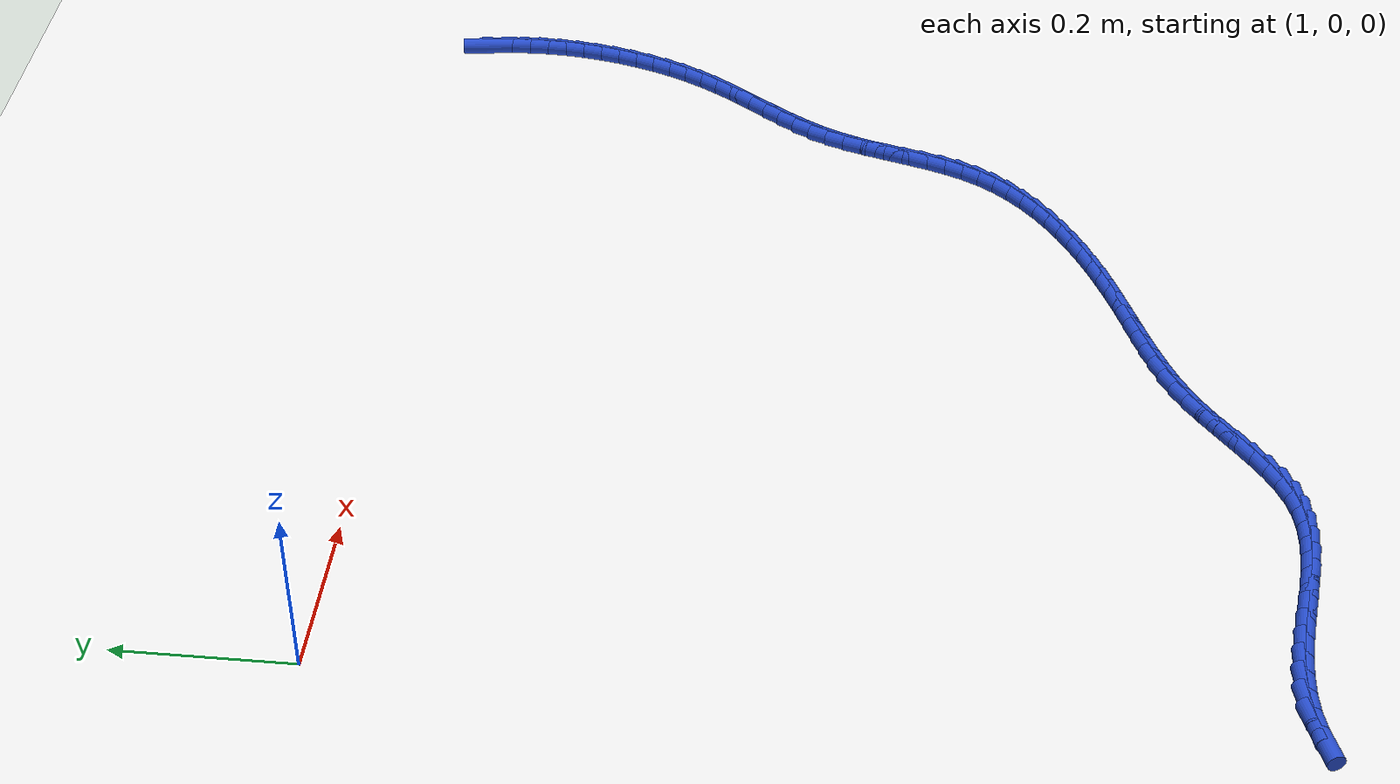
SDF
<sdf version="1.6">
 <world name="default">
  <model name="ground_plane">
   <static>1</static>
   <link name="link">
    <collision name="collision">
     <geometry><plane><normal>0 0 1</normal><size>100 100</size></plane></geometry>
     <surface><friction><ode><mu>100</mu><mu2>50</mu2></ode></friction></surface>
    </collision>
    <visual name="visual">
     <cast_shadows>0</cast_shadows>
     <geometry><plane><normal>0 0 1</normal><size>100 100</size></plane></geometry>
     <material>
      <script><uri>file://media/materials/scripts/gazebo.material</uri><name>Gazebo/WhiteGlow</name></script>
     </material>
    </visual>
   </link>
  </model>
  <model name="line">
   <link name="link_141">
    <pose>2.1189472659324258 -0.017356437604629564 0.01 0 1.57 -1.4437249046157214</pose>
    <collision name="collision">
     <geometry><cylinder><radius>0.01</radius><length>0.08</length></cylinder></geometry>
    </collision>
    <visual name="visual">
     <material>
      <script><name>Gazebo/Blue</name><uri>file://media/materials/scripts/gazebo.material</uri></script>
     </material>
     <geometry><cylinder><radius>0.01</radius><length>0.08</length></cylinder></geometry>
    </visual>
   </link>
   <link name="link_142">
    <pose>2.1220287822517596 -0.04147604283631494 0.01 0 1.57 -1.50576079209515</pose>
    <collision name="collision">
     <geometry><cylinder><radius>0.01</radius><length>0.08</length></cylinder></geometry>
    </collision>
    <visual name="visual">
     <material>
      <script><name>Gazebo/Blue</name><uri>file://media/materials/scripts/gazebo.material</uri></script>
     </material>
     <geometry><cylinder><radius>0.01</radius><length>0.08</length></cylinder></geometry>
    </visual>
   </link>
   <link name="link_143">
    <pose>2.1236189362760736 -0.06589210219619643 0.01 0 1.57 -1.565374990497469</pose>
    <collision name="collision">
     <geometry><cylinder><radius>0.01</radius><length>0.08</length></cylinder></geometry>
    </collision>
    <visual name="visual">
     <material>
      <script><name>Gazebo/Blue</name><uri>file://media/materials/scripts/gazebo.material</uri></script>
     </material>
     <geometry><cylinder><radius>0.01</radius><length>0.08</length></cylinder></geometry>
    </visual>
   </link>
   <link name="link_144">
    <pose>2.1237523675672274 -0.09050411233717365 0.01 0 1.57 1.5186871497282843</pose>
    <collision name="collision">
     <geometry><cylinder><radius>0.01</radius><length>0.08</length></cylinder></geometry>
    </collision>
    <visual name="visual">
     <material>
      <script><name>Gazebo/Blue</name><uri>file://media/materials/scripts/gazebo.material</uri></script>
     </material>
     <geometry><cylinder><radius>0.01</radius><length>0.08</length></cylinder></geometry>
    </visual>
   </link>
   <link name="link_145">
    <pose>2.1224637156870774 -0.11521156991214616 0.01 0 1.57 1.4628837589048294</pose>
    <collision name="collision">
     <geometry><cylinder><radius>0.01</radius><length>0.08</length></cylinder></geometry>
    </collision>
    <visual name="visual">
     <material>
      <script><name>Gazebo/Blue</name><uri>file://media/materials/scripts/gazebo.material</uri></script>
     </material>
     <geometry><cylinder><radius>0.01</radius><length>0.08</length></cylinder></geometry>
    </visual>
   </link>
   <link name="link_146">
    <pose>2.1197876201974815 -0.13991397157401436 0.01 0 1.57 1.408440632733079</pose>
    <collision name="collision">
     <geometry><cylinder><radius>0.01</radius><length>0.08</length></cylinder></geometry>
    </collision>
    <visual name="visual">
     <material>
      <script><name>Gazebo/Blue</name><uri>file://media/materials/scripts/gazebo.material</uri></script>
     </material>
     <geometry><cylinder><radius>0.01</radius><length>0.08</length></cylinder></geometry>
    </visual>
   </link>
   <link name="link_147">
    <pose>2.1157587206602977 -0.16451081397567632 0.01 0 1.57 1.354985546572977</pose>
    <collision name="collision">
     <geometry><cylinder><radius>0.01</radius><length>0.08</length></cylinder></geometry>
    </collision>
    <visual name="visual">
     <material>
      <script><name>Gazebo/Blue</name><uri>file://media/materials/scripts/gazebo.material</uri></script>
     </material>
     <geometry><cylinder><radius>0.01</radius><length>0.08</length></cylinder></geometry>
    </visual>
   </link>
   <link name="link_148">
    <pose>2.110411656637383 -0.18890159377003235 0.01 0 1.57 1.3021433223149648</pose>
    <collision name="collision">
     <geometry><cylinder><radius>0.01</radius><length>0.08</length></cylinder></geometry>
    </collision>
    <visual name="visual">
     <material>
      <script><name>Gazebo/Blue</name><uri>file://media/materials/scripts/gazebo.material</uri></script>
     </material>
     <geometry><cylinder><radius>0.01</radius><length>0.08</length></cylinder></geometry>
    </visual>
   </link>
   <link name="link_149">
    <pose>2.1037810676905955 -0.2129858076099822 0.01 0 1.57 1.249536472732898</pose>
    <collision name="collision">
     <geometry><cylinder><radius>0.01</radius><length>0.08</length></cylinder></geometry>
    </collision>
    <visual name="visual">
     <material>
      <script><name>Gazebo/Blue</name><uri>file://media/materials/scripts/gazebo.material</uri></script>
     </material>
     <geometry><cylinder><radius>0.01</radius><length>0.08</length></cylinder></geometry>
    </visual>
   </link>
   <link name="link_150">
    <pose>2.095901593381792 -0.23666295214842542 0.01 0 1.57 1.1967847387156427</pose>
    <collision name="collision">
     <geometry><cylinder><radius>0.01</radius><length>0.08</length></cylinder></geometry>
    </collision>
    <visual name="visual">
     <material>
      <script><name>Gazebo/Blue</name><uri>file://media/materials/scripts/gazebo.material</uri></script>
     </material>
     <geometry><cylinder><radius>0.01</radius><length>0.08</length></cylinder></geometry>
    </visual>
   </link>
   <link name="link_151">
    <pose>2.0868078732728303 -0.2598325240382614 0.01 0 1.57 1.1435041202133198</pose>
    <collision name="collision">
     <geometry><cylinder><radius>0.01</radius><length>0.08</length></cylinder></geometry>
    </collision>
    <visual name="visual">
     <material>
      <script><name>Gazebo/Blue</name><uri>file://media/materials/scripts/gazebo.material</uri></script>
     </material>
     <geometry><cylinder><radius>0.01</radius><length>0.08</length></cylinder></geometry>
    </visual>
   </link>
   <link name="link_152">
    <pose>2.076534546925569 -0.2823940199323901 0.01 0 1.57 1.0893059840411992</pose>
    <collision name="collision">
     <geometry><cylinder><radius>0.01</radius><length>0.08</length></cylinder></geometry>
    </collision>
    <visual name="visual">
     <material>
      <script><name>Gazebo/Blue</name><uri>file://media/materials/scripts/gazebo.material</uri></script>
     </material>
     <geometry><cylinder><radius>0.01</radius><length>0.08</length></cylinder></geometry>
    </visual>
   </link>
   <link name="link_153">
    <pose>2.0651162539018646 -0.30424693648371093 0.01 0 1.57 1.0354444591178826</pose>
    <collision name="collision">
     <geometry><cylinder><radius>0.01</radius><length>0.08</length></cylinder></geometry>
    </collision>
    <visual name="visual">
     <material>
      <script><name>Gazebo/Blue</name><uri>file://media/materials/scripts/gazebo.material</uri></script>
     </material>
     <geometry><cylinder><radius>0.01</radius><length>0.08</length></cylinder></geometry>
    </visual>
   </link>
   <link name="link_154">
    <pose>2.0526164347894205 -0.3253213101997152 0.01 0 1.57 0.992504211376987</pose>
    <collision name="collision">
     <geometry><cylinder><radius>0.01</radius><length>0.08</length></cylinder></geometry>
    </collision>
    <visual name="visual">
     <material>
      <script><name>Gazebo/Blue</name><uri>file://media/materials/scripts/gazebo.material</uri></script>
     </material>
     <geometry><cylinder><radius>0.01</radius><length>0.08</length></cylinder></geometry>
    </visual>
   </link>
   <link name="link_155">
    <pose>2.039285199576927 -0.34574511693884974 0.01 0 1.57 0.9650577133242405</pose>
    <collision name="collision">
     <geometry><cylinder><radius>0.01</radius><length>0.08</length></cylinder></geometry>
    </collision>
    <visual name="visual">
     <material>
      <script><name>Gazebo/Blue</name><uri>file://media/materials/scripts/gazebo.material</uri></script>
     </material>
     <geometry><cylinder><radius>0.01</radius><length>0.08</length></cylinder></geometry>
    </visual>
   </link>
   <link name="link_156">
    <pose>2.025447073260622 -0.36572524028743325 0.01 0 1.57 0.9533097972507258</pose>
    <collision name="collision">
     <geometry><cylinder><radius>0.01</radius><length>0.08</length></cylinder></geometry>
    </collision>
    <visual name="visual">
     <material>
      <script><name>Gazebo/Blue</name><uri>file://media/materials/scripts/gazebo.material</uri></script>
     </material>
     <geometry><cylinder><radius>0.01</radius><length>0.08</length></cylinder></geometry>
    </visual>
   </link>
   <link name="link_157">
    <pose>2.011426773624503 -0.3854687682588839 0.01 0 1.57 0.9574218856312731</pose>
    <collision name="collision">
     <geometry><cylinder><radius>0.01</radius><length>0.08</length></cylinder></geometry>
    </collision>
    <visual name="visual">
     <material>
      <script><name>Gazebo/Blue</name><uri>file://media/materials/scripts/gazebo.material</uri></script>
     </material>
     <geometry><cylinder><radius>0.01</radius><length>0.08</length></cylinder></geometry>
    </visual>
   </link>
   <link name="link_158">
    <pose>1.9975490184525642 -0.4051827888666186 0.01 0 1.57 0.9776111329164132</pose>
    <collision name="collision">
     <geometry><cylinder><radius>0.01</radius><length>0.08</length></cylinder></geometry>
    </collision>
    <visual name="visual">
     <material>
      <script><name>Gazebo/Blue</name><uri>file://media/materials/scripts/gazebo.material</uri></script>
     </material>
     <geometry><cylinder><radius>0.01</radius><length>0.08</length></cylinder></geometry>
    </visual>
   </link>
   <link name="link_159">
    <pose>1.9841385255288035 -0.42507439012405485 0.01 0 1.57 1.0141199617322656</pose>
    <collision name="collision">
     <geometry><cylinder><radius>0.01</radius><length>0.08</length></cylinder></geometry>
    </collision>
    <visual name="visual">
     <material>
      <script><name>Gazebo/Blue</name><uri>file://media/materials/scripts/gazebo.material</uri></script>
     </material>
     <geometry><cylinder><radius>0.01</radius><length>0.08</length></cylinder></geometry>
    </visual>
   </link>
   <link name="link_160">
    <pose>1.9715200126372168 -0.4453506600446096 0.01 0 1.57 1.0670558437431539</pose>
    <collision name="collision">
     <geometry><cylinder><radius>0.01</radius><length>0.08</length></cylinder></geometry>
    </collision>
    <visual name="visual">
     <material>
      <script><name>Gazebo/Blue</name><uri>file://media/materials/scripts/gazebo.material</uri></script>
     </material>
     <geometry><cylinder><radius>0.01</radius><length>0.08</length></cylinder></geometry>
    </visual>
   </link>
   <link name="link_161">
    <pose>1.9600181975618 -0.46621868664170013 0.01 0 1.57 1.1359985460319892</pose>
    <collision name="collision">
     <geometry><cylinder><radius>0.01</radius><length>0.08</length></cylinder></geometry>
    </collision>
    <visual name="visual">
     <material>
      <script><name>Gazebo/Blue</name><uri>file://media/materials/scripts/gazebo.material</uri></script>
     </material>
     <geometry><cylinder><radius>0.01</radius><length>0.08</length></cylinder></geometry>
    </visual>
   </link>
   <link name="link_162">
    <pose>1.9499557873247089 -0.48788433382984275 0.01 0 1.57 1.2078233080548972</pose>
    <collision name="collision">
     <geometry><cylinder><radius>0.01</radius><length>0.08</length></cylinder></geometry>
    </collision>
    <visual name="visual">
     <material>
      <script><name>Gazebo/Blue</name><uri>file://media/materials/scripts/gazebo.material</uri></script>
     </material>
     <geometry><cylinder><radius>0.01</radius><length>0.08</length></cylinder></geometry>
    </visual>
   </link>
   <link name="link_163">
    <pose>1.9414041447524972 -0.5104004537907837 0.01 0 1.57 1.2585932076036646</pose>
    <collision name="collision">
     <geometry><cylinder><radius>0.01</radius><length>0.08</length></cylinder></geometry>
    </collision>
    <visual name="visual">
     <material>
      <script><name>Gazebo/Blue</name><uri>file://media/materials/scripts/gazebo.material</uri></script>
     </material>
     <geometry><cylinder><radius>0.01</radius><length>0.08</length></cylinder></geometry>
    </visual>
   </link>
   <link name="link_164">
    <pose>1.9339420985311033 -0.5335200568812983 0.01 0 1.57 1.2864601521913246</pose>
    <collision name="collision">
     <geometry><cylinder><radius>0.01</radius><length>0.08</length></cylinder></geometry>
    </collision>
    <visual name="visual">
     <material>
      <script><name>Gazebo/Blue</name><uri>file://media/materials/scripts/gazebo.material</uri></script>
     </material>
     <geometry><cylinder><radius>0.01</radius><length>0.08</length></cylinder></geometry>
    </visual>
   </link>
   <link name="link_165">
    <pose>1.9270912713073567 -0.5569613279267888 0.01 0 1.57 1.2921386811390565</pose>
    <collision name="collision">
     <geometry><cylinder><radius>0.01</radius><length>0.08</length></cylinder></geometry>
    </collision>
    <visual name="visual">
     <material>
      <script><name>Gazebo/Blue</name><uri>file://media/materials/scripts/gazebo.material</uri></script>
     </material>
     <geometry><cylinder><radius>0.01</radius><length>0.08</length></cylinder></geometry>
    </visual>
   </link>
   <link name="link_166">
    <pose>1.9203732857280866 -0.5804424517526591 0.01 0 1.57 1.275720490219385</pose>
    <collision name="collision">
     <geometry><cylinder><radius>0.01</radius><length>0.08</length></cylinder></geometry>
    </collision>
    <visual name="visual">
     <material>
      <script><name>Gazebo/Blue</name><uri>file://media/materials/scripts/gazebo.material</uri></script>
     </material>
     <geometry><cylinder><radius>0.01</radius><length>0.08</length></cylinder></geometry>
    </visual>
   </link>
   <link name="link_167">
    <pose>1.9133097644401216 -0.6036816131843125 0.01 0 1.57 1.2365924568870805</pose>
    <collision name="collision">
     <geometry><cylinder><radius>0.01</radius><length>0.08</length></cylinder></geometry>
    </collision>
    <visual name="visual">
     <material>
      <script><name>Gazebo/Blue</name><uri>file://media/materials/scripts/gazebo.material</uri></script>
     </material>
     <geometry><cylinder><radius>0.01</radius><length>0.08</length></cylinder></geometry>
    </visual>
   </link>
   <link name="link_168">
    <pose>1.9054223300902913 -0.6263969970471525 0.01 0 1.57 1.1736490398307842</pose>
    <collision name="collision">
     <geometry><cylinder><radius>0.01</radius><length>0.08</length></cylinder></geometry>
    </collision>
    <visual name="visual">
     <material>
      <script><name>Gazebo/Blue</name><uri>file://media/materials/scripts/gazebo.material</uri></script>
     </material>
     <geometry><cylinder><radius>0.01</radius><length>0.08</length></cylinder></geometry>
    </visual>
   </link>
   <link name="link_169">
    <pose>1.8962326053254253 -0.6483067881665826 0.01 0 1.57 1.0860667635568957</pose>
    <collision name="collision">
     <geometry><cylinder><radius>0.01</radius><length>0.08</length></cylinder></geometry>
    </collision>
    <visual name="visual">
     <material>
      <script><name>Gazebo/Blue</name><uri>file://media/materials/scripts/gazebo.material</uri></script>
     </material>
     <geometry><cylinder><radius>0.01</radius><length>0.08</length></cylinder></geometry>
    </visual>
   </link>
   <link name="link_170">
    <pose>1.8852658064178869 -0.6691309903141668 0.01 0 1.57 0.9854944180848724</pose>
    <collision name="collision">
     <geometry><cylinder><radius>0.01</radius><length>0.08</length></cylinder></geometry>
    </collision>
    <visual name="visual">
     <material>
      <script><name>Gazebo/Blue</name><uri>file://media/materials/scripts/gazebo.material</uri></script>
     </material>
     <geometry><cylinder><radius>0.01</radius><length>0.08</length></cylinder></geometry>
    </visual>
   </link>
   <link name="link_171">
    <pose>1.8722882765556235 -0.6887116558369687 0.01 0 1.57 0.89169824961133</pose>
    <collision name="collision">
     <geometry><cylinder><radius>0.01</radius><length>0.08</length></cylinder></geometry>
    </collision>
    <visual name="visual">
     <material>
      <script><name>Gazebo/Blue</name><uri>file://media/materials/scripts/gazebo.material</uri></script>
     </material>
     <geometry><cylinder><radius>0.01</radius><length>0.08</length></cylinder></geometry>
    </visual>
   </link>
   <link name="link_172">
    <pose>1.857455561847327 -0.7070878356707075 0.01 0 1.57 0.8070886452139648</pose>
    <collision name="collision">
     <geometry><cylinder><radius>0.01</radius><length>0.08</length></cylinder></geometry>
    </collision>
    <visual name="visual">
     <material>
      <script><name>Gazebo/Blue</name><uri>file://media/materials/scripts/gazebo.material</uri></script>
     </material>
     <geometry><cylinder><radius>0.01</radius><length>0.08</length></cylinder></geometry>
    </visual>
   </link>
   <link name="link_173">
    <pose>1.8409585622213338 -0.7243164754075992 0.01 0 1.57 0.7317287403554019</pose>
    <collision name="collision">
     <geometry><cylinder><radius>0.01</radius><length>0.08</length></cylinder></geometry>
    </collision>
    <visual name="visual">
     <material>
      <script><name>Gazebo/Blue</name><uri>file://media/materials/scripts/gazebo.material</uri></script>
     </material>
     <geometry><cylinder><radius>0.01</radius><length>0.08</length></cylinder></geometry>
    </visual>
   </link>
   <link name="link_174">
    <pose>1.8229881776059824 -0.7404545206398577 0.01 0 1.57 0.6652347266470671</pose>
    <collision name="collision">
     <geometry><cylinder><radius>0.01</radius><length>0.08</length></cylinder></geometry>
    </collision>
    <visual name="visual">
     <material>
      <script><name>Gazebo/Blue</name><uri>file://media/materials/scripts/gazebo.material</uri></script>
     </material>
     <geometry><cylinder><radius>0.01</radius><length>0.08</length></cylinder></geometry>
    </visual>
   </link>
   <link name="link_175">
    <pose>1.8037353079296097 -0.7555589169596987 0.01 0 1.57 0.6069743789170448</pose>
    <collision name="collision">
     <geometry><cylinder><radius>0.01</radius><length>0.08</length></cylinder></geometry>
    </collision>
    <visual name="visual">
     <material>
      <script><name>Gazebo/Blue</name><uri>file://media/materials/scripts/gazebo.material</uri></script>
     </material>
     <geometry><cylinder><radius>0.01</radius><length>0.08</length></cylinder></geometry>
    </visual>
   </link>
   <link name="link_176">
    <pose>1.783390853120553 -0.7696866099593372 0.01 0 1.57 0.5562170486789387</pose>
    <collision name="collision">
     <geometry><cylinder><radius>0.01</radius><length>0.08</length></cylinder></geometry>
    </collision>
    <visual name="visual">
     <material>
      <script><name>Gazebo/Blue</name><uri>file://media/materials/scripts/gazebo.material</uri></script>
     </material>
     <geometry><cylinder><radius>0.01</radius><length>0.08</length></cylinder></geometry>
    </visual>
   </link>
   <link name="link_177">
    <pose>1.762145713107149 -0.7828945452309884 0.01 0 1.57 0.5122329728734346</pose>
    <collision name="collision">
     <geometry><cylinder><radius>0.01</radius><length>0.08</length></cylinder></geometry>
    </collision>
    <visual name="visual">
     <material>
      <script><name>Gazebo/Blue</name><uri>file://media/materials/scripts/gazebo.material</uri></script>
     </material>
     <geometry><cylinder><radius>0.01</radius><length>0.08</length></cylinder></geometry>
    </visual>
   </link>
   <link name="link_178">
    <pose>1.7401907878177358 -0.7952396683668677 0.01 0 1.57 0.47435238632508553</pose>
    <collision name="collision">
     <geometry><cylinder><radius>0.01</radius><length>0.08</length></cylinder></geometry>
    </collision>
    <visual name="visual">
     <material>
      <script><name>Gazebo/Blue</name><uri>file://media/materials/scripts/gazebo.material</uri></script>
     </material>
     <geometry><cylinder><radius>0.01</radius><length>0.08</length></cylinder></geometry>
    </visual>
   </link>
   <link name="link_179">
    <pose>1.71771697718065 -0.8067789249591895 0.01 0 1.57 0.4419975125121406</pose>
    <collision name="collision">
     <geometry><cylinder><radius>0.01</radius><length>0.08</length></cylinder></geometry>
    </collision>
    <visual name="visual">
     <material>
      <script><name>Gazebo/Blue</name><uri>file://media/materials/scripts/gazebo.material</uri></script>
     </material>
     <geometry><cylinder><radius>0.01</radius><length>0.08</length></cylinder></geometry>
    </visual>
   </link>
   <link name="link_180">
    <pose>1.6949151811242293 -0.8175692606001697 0.01 0 1.57 0.4146986929406482</pose>
    <collision name="collision">
     <geometry><cylinder><radius>0.01</radius><length>0.08</length></cylinder></geometry>
    </collision>
    <visual name="visual">
     <material>
      <script><name>Gazebo/Blue</name><uri>file://media/materials/scripts/gazebo.material</uri></script>
     </material>
     <geometry><cylinder><radius>0.01</radius><length>0.08</length></cylinder></geometry>
    </visual>
   </link>
   <link name="link_181">
    <pose>1.6719762995768104 -0.8276676208820233 0.01 0 1.57 0.3925166828353593</pose>
    <collision name="collision">
     <geometry><cylinder><radius>0.01</radius><length>0.08</length></cylinder></geometry>
    </collision>
    <visual name="visual">
     <material>
      <script><name>Gazebo/Blue</name><uri>file://media/materials/scripts/gazebo.material</uri></script>
     </material>
     <geometry><cylinder><radius>0.01</radius><length>0.08</length></cylinder></geometry>
    </visual>
   </link>
   <link name="link_182">
    <pose>1.649080858325688 -0.8371463309259523 0.01 0 1.57 0.3787881407464701</pose>
    <collision name="collision">
     <geometry><cylinder><radius>0.01</radius><length>0.08</length></cylinder></geometry>
    </collision>
    <visual name="visual">
     <material>
      <script><name>Gazebo/Blue</name><uri>file://media/materials/scripts/gazebo.material</uri></script>
     </material>
     <geometry><cylinder><radius>0.01</radius><length>0.08</length></cylinder></geometry>
    </visual>
   </link>
   <link name="link_183">
    <pose>1.6263245051606563 -0.8462035463790099 0.01 0 1.57 0.37553586935063005</pose>
    <collision name="collision">
     <geometry><cylinder><radius>0.01</radius><length>0.08</length></cylinder></geometry>
    </collision>
    <visual name="visual">
     <material>
      <script><name>Gazebo/Blue</name><uri>file://media/materials/scripts/gazebo.material</uri></script>
     </material>
     <geometry><cylinder><radius>0.01</radius><length>0.08</length></cylinder></geometry>
    </visual>
   </link>
   <link name="link_184">
    <pose>1.6037613785935811 -0.8550989598521727 0.01 0 1.57 0.38310368367817765</pose>
    <collision name="collision">
     <geometry><cylinder><radius>0.01</radius><length>0.08</length></cylinder></geometry>
    </collision>
    <visual name="visual">
     <material>
      <script><name>Gazebo/Blue</name><uri>file://media/materials/scripts/gazebo.material</uri></script>
     </material>
     <geometry><cylinder><radius>0.01</radius><length>0.08</length></cylinder></geometry>
    </visual>
   </link>
   <link name="link_185">
    <pose>1.5814453344349555 -0.8640926830575199 0.01 0 1.57 0.40170614520969505</pose>
    <collision name="collision">
     <geometry><cylinder><radius>0.01</radius><length>0.08</length></cylinder></geometry>
    </collision>
    <visual name="visual">
     <material>
      <script><name>Gazebo/Blue</name><uri>file://media/materials/scripts/gazebo.material</uri></script>
     </material>
     <geometry><cylinder><radius>0.01</radius><length>0.08</length></cylinder></geometry>
    </visual>
   </link>
   <link name="link_186">
    <pose>1.559430228495272 -0.87344482770713 0.01 0 1.57 0.4314029375280949</pose>
    <collision name="collision">
     <geometry><cylinder><radius>0.01</radius><length>0.08</length></cylinder></geometry>
    </collision>
    <visual name="visual">
     <material>
      <script><name>Gazebo/Blue</name><uri>file://media/materials/scripts/gazebo.material</uri></script>
     </material>
     <geometry><cylinder><radius>0.01</radius><length>0.08</length></cylinder></geometry>
    </visual>
   </link>
   <link name="link_187">
    <pose>1.5377699165850236 -0.8834155055130819 0.01 0 1.57 0.4720253155953058</pose>
    <collision name="collision">
     <geometry><cylinder><radius>0.01</radius><length>0.08</length></cylinder></geometry>
    </collision>
    <visual name="visual">
     <material>
      <script><name>Gazebo/Blue</name><uri>file://media/materials/scripts/gazebo.material</uri></script>
     </material>
     <geometry><cylinder><radius>0.01</radius><length>0.08</length></cylinder></geometry>
    </visual>
   </link>
   <link name="link_188">
    <pose>1.516518254514703 -0.8942648281874538 0.01 0 1.57 0.5230738550442319</pose>
    <collision name="collision">
     <geometry><cylinder><radius>0.01</radius><length>0.08</length></cylinder></geometry>
    </collision>
    <visual name="visual">
     <material>
      <script><name>Gazebo/Blue</name><uri>file://media/materials/scripts/gazebo.material</uri></script>
     </material>
     <geometry><cylinder><radius>0.01</radius><length>0.08</length></cylinder></geometry>
    </visual>
   </link>
   <link name="link_189">
    <pose>1.4957290980948028 -0.9062529074423246 0.01 0 1.57 0.5834550589916182</pose>
    <collision name="collision">
     <geometry><cylinder><radius>0.01</radius><length>0.08</length></cylinder></geometry>
    </collision>
    <visual name="visual">
     <material>
      <script><name>Gazebo/Blue</name><uri>file://media/materials/scripts/gazebo.material</uri></script>
     </material>
     <geometry><cylinder><radius>0.01</radius><length>0.08</length></cylinder></geometry>
    </visual>
   </link>
   <link name="link_190">
    <pose>1.4754552714750402 -0.9196360212727589 0.01 0 1.57 0.6397752460494618</pose>
    <collision name="collision">
     <geometry><cylinder><radius>0.01</radius><length>0.08</length></cylinder></geometry>
    </collision>
    <visual name="visual">
     <material>
      <script><name>Gazebo/Blue</name><uri>file://media/materials/scripts/gazebo.material</uri></script>
     </material>
     <geometry><cylinder><radius>0.01</radius><length>0.08</length></cylinder></geometry>
    </visual>
   </link>
   <link name="link_191">
    <pose>1.455666739814345 -0.9343625383976861 0.01 0 1.57 0.6719007886765149</pose>
    <collision name="collision">
     <geometry><cylinder><radius>0.01</radius><length>0.08</length></cylinder></geometry>
    </collision>
    <visual name="visual">
     <material>
      <script><name>Gazebo/Blue</name><uri>file://media/materials/scripts/gazebo.material</uri></script>
     </material>
     <geometry><cylinder><radius>0.01</radius><length>0.08</length></cylinder></geometry>
    </visual>
   </link>
   <link name="link_192">
    <pose>1.4361912691308538 -0.9498524064909292 0.01 0 1.57 0.6792076174956062</pose>
    <collision name="collision">
     <geometry><cylinder><radius>0.01</radius><length>0.08</length></cylinder></geometry>
    </collision>
    <visual name="visual">
     <material>
      <script><name>Gazebo/Blue</name><uri>file://media/materials/scripts/gazebo.material</uri></script>
     </material>
     <geometry><cylinder><radius>0.01</radius><length>0.08</length></cylinder></geometry>
    </visual>
   </link>
   <link name="link_193">
    <pose>1.4168426293949232 -0.965473563023198 0.01 0 1.57 0.6618530014118106</pose>
    <collision name="collision">
     <geometry><cylinder><radius>0.01</radius><length>0.08</length></cylinder></geometry>
    </collision>
    <visual name="visual">
     <material>
      <script><name>Gazebo/Blue</name><uri>file://media/materials/scripts/gazebo.material</uri></script>
     </material>
     <geometry><cylinder><radius>0.01</radius><length>0.08</length></cylinder></geometry>
    </visual>
   </link>
   <link name="link_194">
    <pose>1.3974345905769114 -0.9805939454652038 0.01 0 1.57 0.618536254279423</pose>
    <collision name="collision">
     <geometry><cylinder><radius>0.01</radius><length>0.08</length></cylinder></geometry>
    </collision>
    <visual name="visual">
     <material>
      <script><name>Gazebo/Blue</name><uri>file://media/materials/scripts/gazebo.material</uri></script>
     </material>
     <geometry><cylinder><radius>0.01</radius><length>0.08</length></cylinder></geometry>
    </visual>
   </link>
   <link name="link_195">
    <pose>1.3777809226471753 -0.9945814912876566 0.01 0 1.57 0.546667995186685</pose>
    <collision name="collision">
     <geometry><cylinder><radius>0.01</radius><length>0.08</length></cylinder></geometry>
    </collision>
    <visual name="visual">
     <material>
      <script><name>Gazebo/Blue</name><uri>file://media/materials/scripts/gazebo.material</uri></script>
     </material>
     <geometry><cylinder><radius>0.01</radius><length>0.08</length></cylinder></geometry>
    </visual>
   </link>
   <link name="link_196">
    <pose>1.357695395576072 -1.0068041379612669 0.01 0 1.57 0.44311201617696355</pose>
    <collision name="collision">
     <geometry><cylinder><radius>0.01</radius><length>0.08</length></cylinder></geometry>
    </collision>
    <visual name="visual">
     <material>
      <script><name>Gazebo/Blue</name><uri>file://media/materials/scripts/gazebo.material</uri></script>
     </material>
     <geometry><cylinder><radius>0.01</radius><length>0.08</length></cylinder></geometry>
    </visual>
   </link>
   <link name="link_197">
    <pose>1.3369917793339592 -1.0166298229567454 0.01 0 1.57 0.30950934455749657</pose>
    <collision name="collision">
     <geometry><cylinder><radius>0.01</radius><length>0.08</length></cylinder></geometry>
    </collision>
    <visual name="visual">
     <material>
      <script><name>Gazebo/Blue</name><uri>file://media/materials/scripts/gazebo.material</uri></script>
     </material>
     <geometry><cylinder><radius>0.01</radius><length>0.08</length></cylinder></geometry>
    </visual>
   </link>
   <link name="link_198">
    <pose>1.3155033191698071 -1.023501544326803 0.01 0 1.57 0.17889668099251113</pose>
    <collision name="collision">
     <geometry><cylinder><radius>0.01</radius><length>0.08</length></cylinder></geometry>
    </collision>
    <visual name="visual">
     <material>
      <script><name>Gazebo/Blue</name><uri>file://media/materials/scripts/gazebo.material</uri></script>
     </material>
     <geometry><cylinder><radius>0.01</radius><length>0.08</length></cylinder></geometry>
    </visual>
   </link>
   <link name="link_199">
    <pose>1.2932360191740138 -1.0275281380534116 0.01 0 1.57 0.07127509617905672</pose>
    <collision name="collision">
     <geometry><cylinder><radius>0.01</radius><length>0.08</length></cylinder></geometry>
    </collision>
    <visual name="visual">
     <material>
      <script><name>Gazebo/Blue</name><uri>file://media/materials/scripts/gazebo.material</uri></script>
     </material>
     <geometry><cylinder><radius>0.01</radius><length>0.08</length></cylinder></geometry>
    </visual>
   </link>
   <link name="link_200">
    <pose>1.27028623332077 -1.0291666618305808 0.01 0 1.57 -0.012297844552196827</pose>
    <collision name="collision">
     <geometry><cylinder><radius>0.01</radius><length>0.08</length></cylinder></geometry>
    </collision>
    <visual name="visual">
     <material>
      <script><name>Gazebo/Blue</name><uri>file://media/materials/scripts/gazebo.material</uri></script>
     </material>
     <geometry><cylinder><radius>0.01</radius><length>0.08</length></cylinder></geometry>
    </visual>
   </link>
   <link name="link_201">
    <pose>1.2467511050033235 -1.0288772158892263 0.01 0 1.57 -0.07302031787501168</pose>
    <collision name="collision">
     <geometry><cylinder><radius>0.01</radius><length>0.08</length></cylinder></geometry>
    </collision>
    <visual name="visual">
     <material>
      <script><name>Gazebo/Blue</name><uri>file://media/materials/scripts/gazebo.material</uri></script>
     </material>
     <geometry><cylinder><radius>0.01</radius><length>0.08</length></cylinder></geometry>
    </visual>
   </link>
   <link name="link_202">
    <pose>1.2227277776149206 -1.0271199004602631 0.01 0 1.57 -0.11277582784120549</pose>
    <collision name="collision">
     <geometry><cylinder><radius>0.01</radius><length>0.08</length></cylinder></geometry>
    </collision>
    <visual name="visual">
     <material>
      <script><name>Gazebo/Blue</name><uri>file://media/materials/scripts/gazebo.material</uri></script>
     </material>
     <geometry><cylinder><radius>0.01</radius><length>0.08</length></cylinder></geometry>
    </visual>
   </link>
   <link name="link_203">
    <pose>1.1983133945488098 -1.0243548157746074 0.01 0 1.57 -0.1332797363183509</pose>
    <collision name="collision">
     <geometry><cylinder><radius>0.01</radius><length>0.08</length></cylinder></geometry>
    </collision>
    <visual name="visual">
     <material>
      <script><name>Gazebo/Blue</name><uri>file://media/materials/scripts/gazebo.material</uri></script>
     </material>
     <geometry><cylinder><radius>0.01</radius><length>0.08</length></cylinder></geometry>
    </visual>
   </link>
   <link name="link_204">
    <pose>1.1736050991982383 -1.0210420620631742 0.01 0 1.57 -0.13569238048538432</pose>
    <collision name="collision">
     <geometry><cylinder><radius>0.01</radius><length>0.08</length></cylinder></geometry>
    </collision>
    <visual name="visual">
     <material>
      <script><name>Gazebo/Blue</name><uri>file://media/materials/scripts/gazebo.material</uri></script>
     </material>
     <geometry><cylinder><radius>0.01</radius><length>0.08</length></cylinder></geometry>
    </visual>
   </link>
   <link name="link_205">
    <pose>1.1487000349564527 -1.0176417395568795 0.01 0 1.57 -0.12050225716537945</pose>
    <collision name="collision">
     <geometry><cylinder><radius>0.01</radius><length>0.08</length></cylinder></geometry>
    </collision>
    <visual name="visual">
     <material>
      <script><name>Gazebo/Blue</name><uri>file://media/materials/scripts/gazebo.material</uri></script>
     </material>
     <geometry><cylinder><radius>0.01</radius><length>0.08</length></cylinder></geometry>
    </visual>
   </link>
   <link name="link_206">
    <pose>1.1236953452167016 -1.014613948486638 0.01 0 1.57 -0.08755676360274037</pose>
    <collision name="collision">
     <geometry><cylinder><radius>0.01</radius><length>0.08</length></cylinder></geometry>
    </collision>
    <visual name="visual">
     <material>
      <script><name>Gazebo/Blue</name><uri>file://media/materials/scripts/gazebo.material</uri></script>
     </material>
     <geometry><cylinder><radius>0.01</radius><length>0.08</length></cylinder></geometry>
    </visual>
   </link>
   <link name="link_207">
    <pose>1.0986881733722327 -1.0124187890833665 0.01 0 1.57 -0.03620803698080605</pose>
    <collision name="collision">
     <geometry><cylinder><radius>0.01</radius><length>0.08</length></cylinder></geometry>
    </collision>
    <visual name="visual">
     <material>
      <script><name>Gazebo/Blue</name><uri>file://media/materials/scripts/gazebo.material</uri></script>
     </material>
     <geometry><cylinder><radius>0.01</radius><length>0.08</length></cylinder></geometry>
    </visual>
   </link>
   <link name="link_208">
    <pose>1.0737756628162913 -1.0115163615779794 0.01 0 1.57 0.03438693907243381</pose>
    <collision name="collision">
     <geometry><cylinder><radius>0.01</radius><length>0.08</length></cylinder></geometry>
    </collision>
    <visual name="visual">
     <material>
      <script><name>Gazebo/Blue</name><uri>file://media/materials/scripts/gazebo.material</uri></script>
     </material>
     <geometry><cylinder><radius>0.01</radius><length>0.08</length></cylinder></geometry>
    </visual>
   </link>
   <link name="link_209">
    <pose>1.0490549569421277 -1.0123667662013927 0.01 0 1.57 0.12473248318287286</pose>
    <collision name="collision">
     <geometry><cylinder><radius>0.01</radius><length>0.08</length></cylinder></geometry>
    </collision>
    <visual name="visual">
     <material>
      <script><name>Gazebo/Blue</name><uri>file://media/materials/scripts/gazebo.material</uri></script>
     </material>
     <geometry><cylinder><radius>0.01</radius><length>0.08</length></cylinder></geometry>
    </visual>
   </link>
   <link name="link_210">
    <pose>1.0246231991429884 -1.0154301031845219 0.01 0 1.57 0.2328370941810504</pose>
    <collision name="collision">
     <geometry><cylinder><radius>0.01</radius><length>0.08</length></cylinder></geometry>
    </collision>
    <visual name="visual">
     <material>
      <script><name>Gazebo/Blue</name><uri>file://media/materials/scripts/gazebo.material</uri></script>
     </material>
     <geometry><cylinder><radius>0.01</radius><length>0.08</length></cylinder></geometry>
    </visual>
   </link>
   <link name="link_211">
    <pose>1.0005748364566065 -1.021132883627627 0.01 0 1.57 0.3281882175528737</pose>
    <collision name="collision">
     <geometry><cylinder><radius>0.01</radius><length>0.08</length></cylinder></geometry>
    </collision>
    <visual name="visual">
     <material>
      <script><name>Gazebo/Blue</name><uri>file://media/materials/scripts/gazebo.material</uri></script>
     </material>
     <geometry><cylinder><radius>0.01</radius><length>0.08</length></cylinder></geometry>
    </visual>
   </link>
  </model>
 </world>
</sdf>
